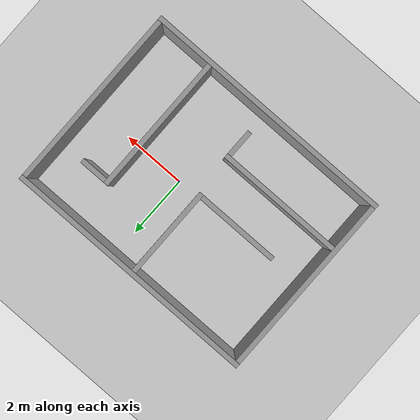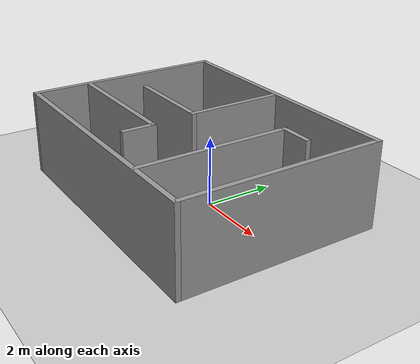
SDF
<sdf version="1.7">
 <world name="default">
  <light name="sun" type="directional">
   <pose>0 0 10 0 -0 0</pose>
   <diffuse>0.8 0.8 0.8 1</diffuse>
   <specular>0.2 0.2 0.2 1</specular>
   <attenuation>
    <range>1000</range>
    <constant>0.9</constant>
    <linear>0.01</linear>
    <quadratic>0.001</quadratic>
   </attenuation>
   <direction>-0.5 0.1 -0.9</direction>
   <spot><inner_angle>0</inner_angle><outer_angle>0</outer_angle><falloff>0</falloff></spot>
  </light>
  <model name="ground_plane">
   <static>1</static>
   <link name="link">
    <collision name="collision">
     <geometry><plane><normal>0 0 1</normal><size>100 100</size></plane></geometry>
     <surface><friction><ode><mu>100</mu><mu2>50</mu2></ode></friction></surface>
    </collision>
    <visual name="visual">
     <cast_shadows>0</cast_shadows>
     <geometry><plane><normal>0 0 1</normal><size>100 100</size></plane></geometry>
     <material>
      <script><uri>file://media/materials/scripts/gazebo.material</uri><name>Gazebo/Grey</name></script>
     </material>
    </visual>
   </link>
  </model>
  <gravity>0 0 -9.8</gravity>
  <magnetic_field>6e-06 2.3e-05 -4.2e-05</magnetic_field>
  <atmosphere type="adiabatic"/>
  <physics type="ode">
   <max_step_size>0.001</max_step_size>
   <real_time_factor>1</real_time_factor>
   <real_time_update_rate>1000</real_time_update_rate>
  </physics>
  <scene><ambient>0.4 0.4 0.4 1</ambient><background>0.7 0.7 0.7 1</background><shadows>1</shadows></scene>
  <audio><device>default</device></audio>
  <spherical_coordinates>
   <surface_model>EARTH_WGS84</surface_model>
   <latitude_deg>0</latitude_deg>
   <longitude_deg>0</longitude_deg>
   <elevation>0</elevation>
   <heading_deg>0</heading_deg>
  </spherical_coordinates>
  <model name="room">
   <pose>-0.632663 1.43812 0 0 -0 0</pose>
   <link name="Wall_0">
    <collision name="Wall_0_Collision">
     <geometry><box><size>8 0.15 2.5</size></box></geometry>
     <pose>0 0 1.25 0 -0 0</pose>
    </collision>
    <visual name="Wall_0_Visual">
     <pose>0 0 1.25 0 -0 0</pose>
     <geometry><box><size>8 0.15 2.5</size></box></geometry>
     <material>
      <script><uri>file://media/materials/scripts/gazebo.material</uri><name>Gazebo/Grey</name></script>
      <ambient>1 1 1 1</ambient>
     </material>
     <meta><layer>0</layer></meta>
    </visual>
    <pose>0 1.3375 0 0 -0 0</pose>
   </link>
   <link name="Wall_10">
    <collision name="Wall_10_Collision">
     <geometry><box><size>8 0.15 2.5</size></box></geometry>
     <pose>0 0 1.25 0 -0 0</pose>
    </collision>
    <visual name="Wall_10_Visual">
     <pose>0 0 1.25 0 -0 0</pose>
     <geometry><box><size>8 0.15 2.5</size></box></geometry>
     <material>
      <script><uri>file://media/materials/scripts/gazebo.material</uri><name>Gazebo/Grey</name></script>
      <ambient>1 1 1 1</ambient>
     </material>
     <meta><layer>0</layer></meta>
    </visual>
    <pose>0 -4.5125 0 0 -0 3.14159</pose>
   </link>
   <link name="Wall_11">
    <collision name="Wall_11_Collision">
     <geometry><box><size>6 0.15 2.5</size></box></geometry>
     <pose>0 0 1.25 0 -0 0</pose>
    </collision>
    <visual name="Wall_11_Visual">
     <pose>0 0 1.25 0 -0 0</pose>
     <geometry><box><size>6 0.15 2.5</size></box></geometry>
     <material>
      <script><uri>file://media/materials/scripts/gazebo.material</uri><name>Gazebo/Grey</name></script>
      <ambient>1 1 1 1</ambient>
     </material>
     <meta><layer>0</layer></meta>
    </visual>
    <pose>-3.925 -1.5875 0 0 -0 1.5708</pose>
   </link>
   <link name="Wall_13">
    <collision name="Wall_13_Collision">
     <geometry><box><size>3 0.15 2.5</size></box></geometry>
     <pose>0 0 1.25 0 -0 0</pose>
    </collision>
    <visual name="Wall_13_Visual">
     <pose>0 0 1.25 0 -0 0</pose>
     <geometry><box><size>3 0.15 2.5</size></box></geometry>
     <material>
      <script><uri>file://media/materials/scripts/gazebo.material</uri><name>Gazebo/Grey</name></script>
      <ambient>1 1 1 1</ambient>
     </material>
     <meta><layer>0</layer></meta>
    </visual>
    <pose>-0.095 -0.1075 0 0 -0 -1.5708</pose>
   </link>
   <link name="Wall_14">
    <collision name="Wall_14_Collision">
     <geometry><box><size>2.75 0.15 2.5</size></box></geometry>
     <pose>0 0 1.25 0 -0 0</pose>
    </collision>
    <visual name="Wall_14_Visual">
     <pose>0 0 1.25 0 -0 0</pose>
     <geometry><box><size>2.75 0.15 2.5</size></box></geometry>
     <material>
      <script><uri>file://media/materials/scripts/gazebo.material</uri><name>Gazebo/Grey</name></script>
      <ambient>1 1 1 1</ambient>
     </material>
     <meta><layer>0</layer></meta>
    </visual>
    <pose>-1.395 -1.5325 0 0 -0 3.14159</pose>
   </link>
   <link name="Wall_16">
    <collision name="Wall_16_Collision">
     <geometry><box><size>4 0.15 2.5</size></box></geometry>
     <pose>0 0 1.25 0 -0 0</pose>
    </collision>
    <visual name="Wall_16_Visual">
     <pose>0 0 1.25 0 -0 0</pose>
     <geometry><box><size>4 0.15 2.5</size></box></geometry>
     <material>
      <script><uri>file://media/materials/scripts/gazebo.material</uri><name>Gazebo/Grey</name></script>
      <ambient>1 1 1 1</ambient>
     </material>
     <meta><layer>0</layer></meta>
    </visual>
    <pose>-1.9 -2.8425 0 0 -0 0</pose>
   </link>
   <link name="Wall_17">
    <collision name="Wall_17_Collision">
     <geometry><box><size>1 0.15 2.5</size></box></geometry>
     <pose>0 0 1.25 0 -0 0</pose>
    </collision>
    <visual name="Wall_17_Visual">
     <pose>0 0 1.25 0 -0 0</pose>
     <geometry><box><size>1 0.15 2.5</size></box></geometry>
     <material>
      <script><uri>file://media/materials/scripts/gazebo.material</uri><name>Gazebo/Grey</name></script>
      <ambient>1 1 1 1</ambient>
     </material>
     <meta><layer>0</layer></meta>
    </visual>
    <pose>0.025 -3.2675 0 0 -0 -1.5708</pose>
   </link>
   <link name="Wall_19">
    <collision name="Wall_19_Collision">
     <geometry><box><size>4.5 0.15 2.5</size></box></geometry>
     <pose>0 0 1.25 0 -0 0</pose>
    </collision>
    <visual name="Wall_19_Visual">
     <pose>0 0 1.25 0 -0 0</pose>
     <geometry><box><size>4.5 0.15 2.5</size></box></geometry>
     <material>
      <script><uri>file://media/materials/scripts/gazebo.material</uri><name>Gazebo/Grey</name></script>
      <ambient>1 1 1 1</ambient>
     </material>
     <meta><layer>0</layer></meta>
    </visual>
    <pose>2.085 -2.2975 0 0 -0 1.5708</pose>
   </link>
   <link name="Wall_20">
    <collision name="Wall_20_Collision">
     <geometry><box><size>1 0.15 2.5</size></box></geometry>
     <pose>0 0 1.25 0 -0 0</pose>
    </collision>
    <visual name="Wall_20_Visual">
     <pose>0 0 1.25 0 -0 0</pose>
     <geometry><box><size>1 0.15 2.5</size></box></geometry>
     <material>
      <script><uri>file://media/materials/scripts/gazebo.material</uri><name>Gazebo/Grey</name></script>
      <ambient>1 1 1 1</ambient>
     </material>
     <meta><layer>0</layer></meta>
    </visual>
    <pose>2.51 -0.122499 0 0 -0 0</pose>
   </link>
   <link name="Wall_9">
    <collision name="Wall_9_Collision">
     <geometry><box><size>6 0.15 2.5</size></box></geometry>
     <pose>0 0 1.25 0 -0 0</pose>
    </collision>
    <visual name="Wall_9_Visual">
     <pose>0 0 1.25 0 -0 0</pose>
     <geometry><box><size>6 0.15 2.5</size></box></geometry>
     <material>
      <script><uri>file://media/materials/scripts/gazebo.material</uri><name>Gazebo/Grey</name></script>
      <ambient>1 1 1 1</ambient>
     </material>
     <meta><layer>0</layer></meta>
    </visual>
    <pose>3.925 -1.5875 0 0 -0 -1.5708</pose>
   </link>
   <static>1</static>
  </model>
 </world>
</sdf>
